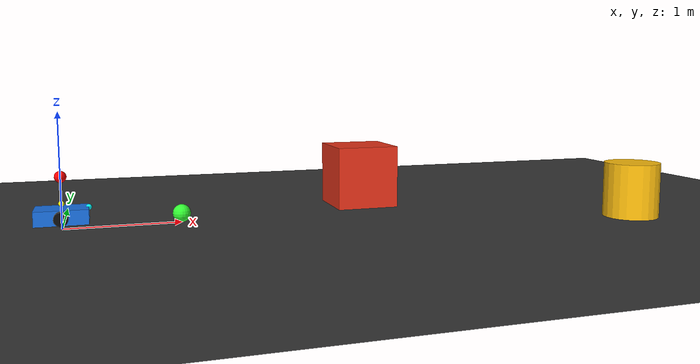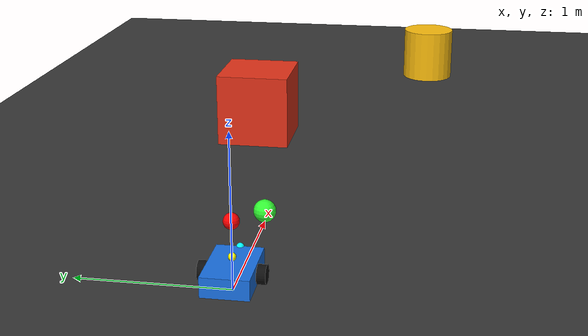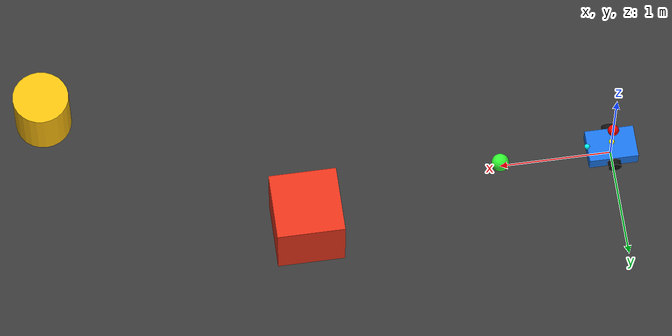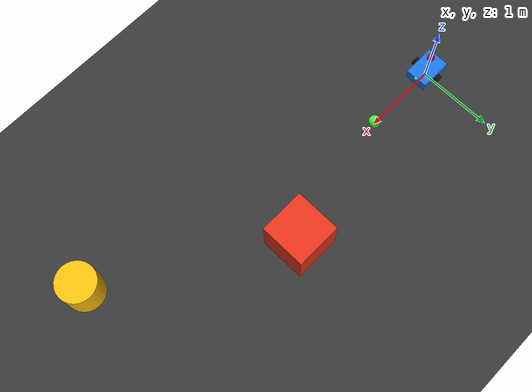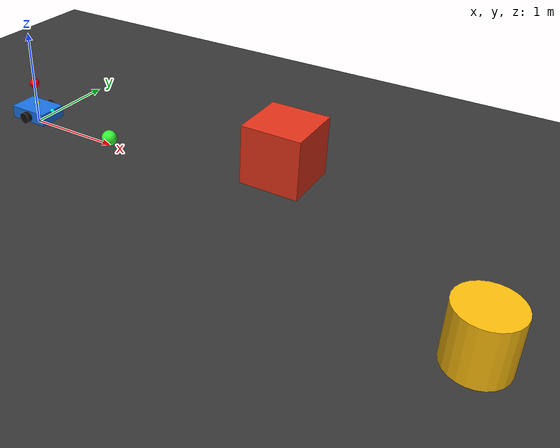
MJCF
<mujoco model="automotive_project_viewer">
  <compiler angle="degree"/>
  <option timestep="0.01" gravity="0 0 -9.81"/>
  <visual>
    <global offwidth="1280" offheight="720"/>
    <quality shadowsize="2048"/>
  </visual>
  <asset>
    <texture name="grid" type="2d" builtin="checker"
             rgb1=".15 .15 .15" rgb2=".28 .28 .28" width="512" height="512"/>
    <material name="ground" texture="grid" texrepeat="12 12"/>
    <material name="car_body" rgba=".1 .45 .9 1"/>
    <material name="wheel" rgba=".06 .06 .06 1"/>
    <material name="obstacle" rgba=".9 .2 .1 1"/>
    <material name="warning" rgba="1 .75 .05 1"/>
  </asset>

  <worldbody>
    <light name="main_light" pos="0 0 6" dir="0 0 -1"/>
    <geom name="floor" type="plane" size="20 20 .1" material="ground"/>

    <camera name="overview" pos="6 -10 7" xyaxes=".86 .50 0 -.30 .52 .80"/>
    <camera name="follow_cam" mode="trackcom" target="base" pos="0 -4 2"/>
    <camera name="front_sensor_cam" mode="trackcom" target="base" pos="0 -2 .8"/>

    <body name="base" pos="0 0 .12">
      <freejoint/>
      <geom name="chassis" type="box" size=".22 .15 .065" mass="1.4" material="car_body"/>
      <site name="imu_site" pos="0 0 .10" size=".025" rgba="1 1 0 1"/>
      <site name="front_sensor_site" pos=".22 0 .06" size=".025" rgba="0 1 1 1"/>

      <body name="left_wheel" pos="0 .18 0">
        <joint name="left_wheel_joint" type="hinge" axis="0 1 0" damping=".02"/>
        <geom type="cylinder" size=".06 .028" euler="90 0 0" mass=".16" material="wheel"/>
      </body>

      <body name="right_wheel" pos="0 -.18 0">
        <joint name="right_wheel_joint" type="hinge" axis="0 1 0" damping=".02"/>
        <geom type="cylinder" size=".06 .028" euler="90 0 0" mass=".16" material="wheel"/>
      </body>
    </body>

    <body name="obstacle_1" pos="2.8 .4 .3">
      <geom name="obstacle_1_geom" type="box" size=".3 .3 .3" material="obstacle"/>
    </body>

    <body name="obstacle_2" pos="5.0 -1.0 .25">
      <geom name="obstacle_2_geom" type="cylinder" size=".25 .25" material="warning"/>
    </body>

    <body name="target_marker" mocap="true" pos="1 0 .08">
      <geom type="sphere" size=".08" rgba=".2 1 .2 1"/>
    </body>

    <body name="risk_marker" mocap="true" pos="0 0 .45">
      <geom type="sphere" size=".05" rgba="1 0 0 1"/>
    </body>
  </worldbody>

  <actuator>
    <velocity name="left_motor" joint="left_wheel_joint" kv="2" ctrlrange="-20 20"/>
    <velocity name="right_motor" joint="right_wheel_joint" kv="2" ctrlrange="-20 20"/>
  </actuator>

  <sensor>
    <framepos name="base_position" objtype="body" objname="base"/>
    <framequat name="base_orientation" objtype="body" objname="base"/>
    <velocimeter name="base_linear_velocity" site="imu_site"/>
    <gyro name="base_gyro" site="imu_site"/>
    <jointvel name="left_wheel_velocity" joint="left_wheel_joint"/>
    <jointvel name="right_wheel_velocity" joint="right_wheel_joint"/>
  </sensor>
</mujoco>
